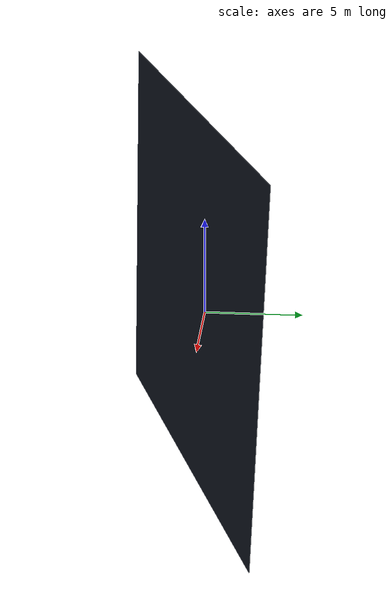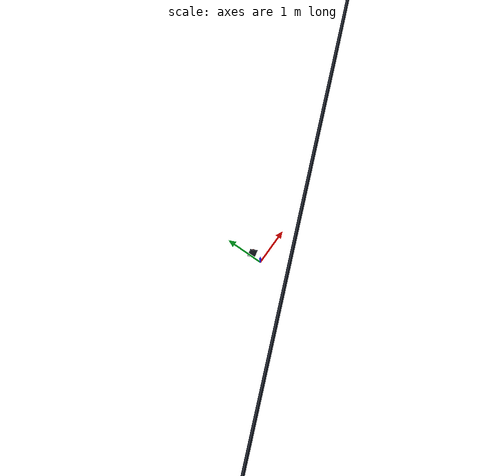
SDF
<?xml version="1.0"?>
<sdf version="1.10">
  <world name="visiondoctor_rgbd">
    <physics name="deterministic" type="ignored">
      <max_step_size>0.001</max_step_size>
      <real_time_factor>1.0</real_time_factor>
    </physics>

    <plugin filename="gz-sim-physics-system" name="gz::sim::systems::Physics"/>
    <plugin filename="gz-sim-user-commands-system" name="gz::sim::systems::UserCommands"/>
    <plugin filename="gz-sim-scene-broadcaster-system"
            name="gz::sim::systems::SceneBroadcaster"/>
    <plugin filename="gz-sim-sensors-system" name="gz::sim::systems::Sensors">
      <render_engine>ogre2</render_engine>
    </plugin>

    <scene>
      <ambient>0.35 0.35 0.35 1</ambient>
      <background>0.025 0.031 0.042 1</background>
      <shadows>false</shadows>
    </scene>

    <light name="key_light" type="directional">
      <cast_shadows>false</cast_shadows>
      <pose>0 0 2 0 0 0</pose>
      <diffuse>0.9 0.9 0.9 1</diffuse>
      <specular>0.1 0.1 0.1 1</specular>
      <direction>-1 0 -0.2</direction>
    </light>

    <!-- Gazebo camera body: +X forward, +Y left, +Z up. -->
    <model name="vision_camera">
      <static>true</static>
      <pose>0.14227413 0.56399989 0.63231015 -2.03444393 -0.72972766 -2.03444394</pose>
      <link name="camera_link">
        <sensor name="rgbd" type="rgbd_camera">
          <always_on>true</always_on>
          <update_rate>15</update_rate>
          <topic>/visiondoctor/rgbd</topic>
          <camera>
            <horizontal_fov>1.0471975512</horizontal_fov>
            <image>
              <width>640</width>
              <height>480</height>
              <format>R8G8B8</format>
            </image>
            <clip>
              <near>0.1</near>
              <far>3.0</far>
            </clip>
          </camera>
        </sensor>
      </link>
    </model>

    <!-- A far surface keeps the complete depth image finite and measurable. -->
    <model name="backdrop">
      <static>true</static>
      <pose>0.35017254 -0.69092624 0.96731374 0.09176023 0.00167026 1.97078945</pose>
      <link name="backdrop_link">
        <visual name="backdrop_visual">
          <geometry>
            <box><size>0.02 20.0 20.0</size></box>
          </geometry>
          <material>
            <ambient>0.06 0.08 0.12 1</ambient>
            <diffuse>0.06 0.08 0.12 1</diffuse>
          </material>
        </visual>
      </link>
    </model>

    <model name="vision_target">
      <static>true</static>
      <pose>-0.02439253 0.23066656 0.96564348 0.09176023 0.00167026 1.97078945</pose>
      <link name="target_link">
        <visual name="board">
          <pose>-0.00970703 0.01250518 0.01222269 -0.79682148 -0.50676490 0.21713622</pose>
          <geometry>
            <box><size>0.20 0.20 0.02</size></box>
          </geometry>
          <material>
            <ambient>0.12 0.14 0.18 1</ambient>
            <diffuse>0.12 0.14 0.18 1</diffuse>
          </material>
        </visual>

        <visual name="origin_marker">
          <pose>0 0 0 -0.79682148 -0.50676490 0.21713622</pose>
          <geometry>
            <cylinder><radius>0.014</radius><length>0.002</length></cylinder>
          </geometry>
          <material>
            <ambient>0.05 1.0 0.10 1</ambient>
            <diffuse>0.05 1.0 0.10 1</diffuse>
            <emissive>0.03 0.7 0.06 1</emissive>
          </material>
        </visual>

        <visual name="x_marker">
          <pose>0 -0.08 0 -0.79682148 -0.50676490 0.21713622</pose>
          <geometry>
            <cylinder><radius>0.014</radius><length>0.002</length></cylinder>
          </geometry>
          <material>
            <ambient>1.0 0.05 0.05 1</ambient>
            <diffuse>1.0 0.05 0.05 1</diffuse>
            <emissive>0.7 0.03 0.03 1</emissive>
          </material>
        </visual>

        <visual name="y_marker">
          <pose>0 0 -0.08 -0.79682148 -0.50676490 0.21713622</pose>
          <geometry>
            <cylinder><radius>0.014</radius><length>0.002</length></cylinder>
          </geometry>
          <material>
            <ambient>0.05 0.10 1.0 1</ambient>
            <diffuse>0.05 0.10 1.0 1</diffuse>
            <emissive>0.03 0.06 0.7 1</emissive>
          </material>
        </visual>
      </link>
    </model>
  </world>
</sdf>
